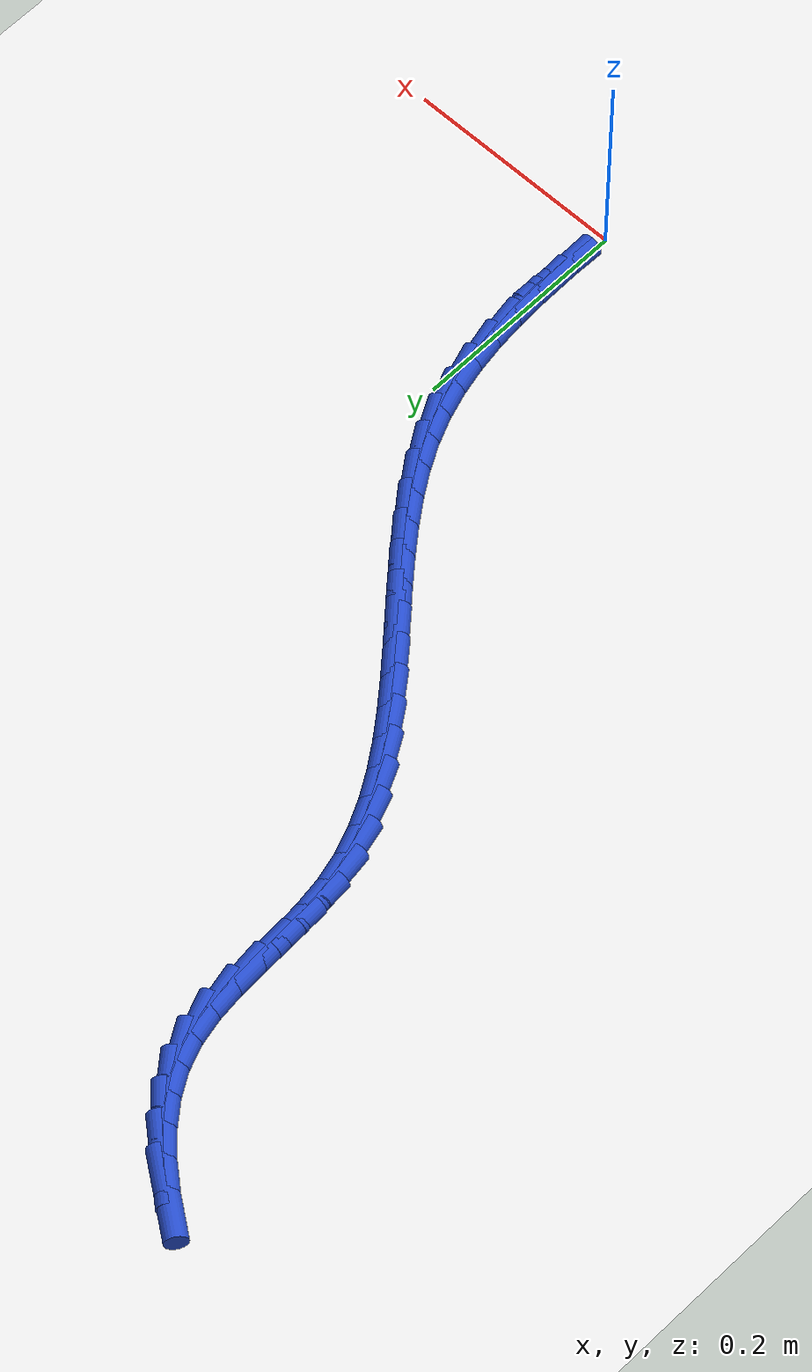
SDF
<sdf version="1.6">
 <world name="default">
  <model name="ground_plane">
   <static>1</static>
   <link name="link">
    <collision name="collision">
     <geometry><plane><normal>0 0 1</normal><size>100 100</size></plane></geometry>
     <surface><friction><ode><mu>100</mu><mu2>50</mu2></ode></friction></surface>
    </collision>
    <visual name="visual">
     <cast_shadows>0</cast_shadows>
     <geometry><plane><normal>0 0 1</normal><size>100 100</size></plane></geometry>
     <material>
      <script><uri>file://media/materials/scripts/gazebo.material</uri><name>Gazebo/WhiteGlow</name></script>
     </material>
    </visual>
   </link>
  </model>
  <model name="line">
   <link name="link_2">
    <pose>0.0007790679116315842 0.05629749624531425 0.01 0 1.57 -1.5500891048895007</pose>
    <collision name="collision">
     <geometry><cylinder><radius>0.01</radius><length>0.08</length></cylinder></geometry>
    </collision>
    <visual name="visual">
     <material>
      <script><name>Gazebo/Blue</name><uri>file://media/materials/scripts/gazebo.material</uri></script>
     </material>
     <geometry><cylinder><radius>0.01</radius><length>0.08</length></cylinder></geometry>
    </visual>
   </link>
   <link name="link_3">
    <pose>0.0001979138139402434 0.08435877041345025 0.01 0 1.57 -1.5134664721738142</pose>
    <collision name="collision">
     <geometry><cylinder><radius>0.01</radius><length>0.08</length></cylinder></geometry>
    </collision>
    <visual name="visual">
     <material>
      <script><name>Gazebo/Blue</name><uri>file://media/materials/scripts/gazebo.material</uri></script>
     </material>
     <geometry><cylinder><radius>0.01</radius><length>0.08</length></cylinder></geometry>
    </visual>
   </link>
   <link name="link_4">
    <pose>-0.001398993875864168 0.11218297808912789 0.01 0 1.57 -1.4659433553836858</pose>
    <collision name="collision">
     <geometry><cylinder><radius>0.01</radius><length>0.08</length></cylinder></geometry>
    </collision>
    <visual name="visual">
     <material>
      <script><name>Gazebo/Blue</name><uri>file://media/materials/scripts/gazebo.material</uri></script>
     </material>
     <geometry><cylinder><radius>0.01</radius><length>0.08</length></cylinder></geometry>
    </visual>
   </link>
   <link name="link_5">
    <pose>-0.004288126325112888 0.13963605638026394 0.01 0 1.57 -1.4068569273346656</pose>
    <collision name="collision">
     <geometry><cylinder><radius>0.01</radius><length>0.08</length></cylinder></geometry>
    </collision>
    <visual name="visual">
     <material>
      <script><name>Gazebo/Blue</name><uri>file://media/materials/scripts/gazebo.material</uri></script>
     </material>
     <geometry><cylinder><radius>0.01</radius><length>0.08</length></cylinder></geometry>
    </visual>
   </link>
   <link name="link_6">
    <pose>-0.008745954701137162 0.1665839423947753 0.01 0 1.57 -1.3356494551655287</pose>
    <collision name="collision">
     <geometry><cylinder><radius>0.01</radius><length>0.08</length></cylinder></geometry>
    </collision>
    <visual name="visual">
     <material>
      <script><name>Gazebo/Blue</name><uri>file://media/materials/scripts/gazebo.material</uri></script>
     </material>
     <geometry><cylinder><radius>0.01</radius><length>0.08</length></cylinder></geometry>
    </visual>
   </link>
   <link name="link_7">
    <pose>-0.015048950171268215 0.19289257324057857 0.01 0 1.57 -1.2521200874395373</pose>
    <collision name="collision">
     <geometry><cylinder><radius>0.01</radius><length>0.08</length></cylinder></geometry>
    </collision>
    <visual name="visual">
     <material>
      <script><name>Gazebo/Blue</name><uri>file://media/materials/scripts/gazebo.material</uri></script>
     </material>
     <geometry><cylinder><radius>0.01</radius><length>0.08</length></cylinder></geometry>
    </visual>
   </link>
   <link name="link_8">
    <pose>-0.023473583902837297 0.2184278860255907 0.01 0 1.57 -1.1592079743053723</pose>
    <collision name="collision">
     <geometry><cylinder><radius>0.01</radius><length>0.08</length></cylinder></geometry>
    </collision>
    <visual name="visual">
     <material>
      <script><name>Gazebo/Blue</name><uri>file://media/materials/scripts/gazebo.material</uri></script>
     </material>
     <geometry><cylinder><radius>0.01</radius><length>0.08</length></cylinder></geometry>
    </visual>
   </link>
   <link name="link_9">
    <pose>-0.034235499437380454 0.2430817234303965 0.01 0 1.57 -1.0742457269397332</pose>
    <collision name="collision">
     <geometry><cylinder><radius>0.01</radius><length>0.08</length></cylinder></geometry>
    </collision>
    <visual name="visual">
     <material>
      <script><name>Gazebo/Blue</name><uri>file://media/materials/scripts/gazebo.material</uri></script>
     </material>
     <geometry><cylinder><radius>0.01</radius><length>0.08</length></cylinder></geometry>
    </visual>
   </link>
   <link name="link_10">
    <pose>-0.047149923148034005 0.2669164597964494 0.01 0 1.57 -1.004362986404253</pose>
    <collision name="collision">
     <geometry><cylinder><radius>0.01</radius><length>0.08</length></cylinder></geometry>
    </collision>
    <visual name="visual">
     <material>
      <script><name>Gazebo/Blue</name><uri>file://media/materials/scripts/gazebo.material</uri></script>
     </material>
     <geometry><cylinder><radius>0.01</radius><length>0.08</length></cylinder></geometry>
    </visual>
   </link>
   <link name="link_11">
    <pose>-0.061870185652145554 0.2900634184371774 0.01 0 1.57 -0.9492944754574141</pose>
    <collision name="collision">
     <geometry><cylinder><radius>0.01</radius><length>0.08</length></cylinder></geometry>
    </collision>
    <visual name="visual">
     <material>
      <script><name>Gazebo/Blue</name><uri>file://media/materials/scripts/gazebo.material</uri></script>
     </material>
     <geometry><cylinder><radius>0.01</radius><length>0.08</length></cylinder></geometry>
    </visual>
   </link>
   <link name="link_12">
    <pose>-0.07804916304784443 0.3126541162389206 0.01 0 1.57 -0.9083384957608868</pose>
    <collision name="collision">
     <geometry><cylinder><radius>0.01</radius><length>0.08</length></cylinder></geometry>
    </collision>
    <visual name="visual">
     <material>
      <script><name>Gazebo/Blue</name><uri>file://media/materials/scripts/gazebo.material</uri></script>
     </material>
     <geometry><cylinder><radius>0.01</radius><length>0.08</length></cylinder></geometry>
    </visual>
   </link>
   <link name="link_13">
    <pose>-0.09533973143325988 0.3348200700880185 0.01 0 1.57 -0.8807233316305242</pose>
    <collision name="collision">
     <geometry><cylinder><radius>0.01</radius><length>0.08</length></cylinder></geometry>
    </collision>
    <visual name="visual">
     <material>
      <script><name>Gazebo/Blue</name><uri>file://media/materials/scripts/gazebo.material</uri></script>
     </material>
     <geometry><cylinder><radius>0.01</radius><length>0.08</length></cylinder></geometry>
    </visual>
   </link>
   <link name="link_14">
    <pose>-0.11339476690652123 0.35669279687081135 0.01 0 1.57 -0.8658207516426746</pose>
    <collision name="collision">
     <geometry><cylinder><radius>0.01</radius><length>0.08</length></cylinder></geometry>
    </collision>
    <visual name="visual">
     <material>
      <script><name>Gazebo/Blue</name><uri>file://media/materials/scripts/gazebo.material</uri></script>
     </material>
     <geometry><cylinder><radius>0.01</radius><length>0.08</length></cylinder></geometry>
    </visual>
   </link>
   <link name="link_15">
    <pose>-0.1318671455657577 0.3784038134736387 0.01 0 1.57 -0.8632602860773909</pose>
    <collision name="collision">
     <geometry><cylinder><radius>0.01</radius><length>0.08</length></cylinder></geometry>
    </collision>
    <visual name="visual">
     <material>
      <script><name>Gazebo/Blue</name><uri>file://media/materials/scripts/gazebo.material</uri></script>
     </material>
     <geometry><cylinder><radius>0.01</radius><length>0.08</length></cylinder></geometry>
    </visual>
   </link>
   <link name="link_16">
    <pose>-0.1504097435090987 0.40008463678284073 0.01 0 1.57 -0.8729798633366467</pose>
    <collision name="collision">
     <geometry><cylinder><radius>0.01</radius><length>0.08</length></cylinder></geometry>
    </collision>
    <visual name="visual">
     <material>
      <script><name>Gazebo/Blue</name><uri>file://media/materials/scripts/gazebo.material</uri></script>
     </material>
     <geometry><cylinder><radius>0.01</radius><length>0.08</length></cylinder></geometry>
    </visual>
   </link>
   <link name="link_17">
    <pose>-0.1686754368346734 0.421866783684757 0.01 0 1.57 -0.8952340096742046</pose>
    <collision name="collision">
     <geometry><cylinder><radius>0.01</radius><length>0.08</length></cylinder></geometry>
    </collision>
    <visual name="visual">
     <material>
      <script><name>Gazebo/Blue</name><uri>file://media/materials/scripts/gazebo.material</uri></script>
     </material>
     <geometry><cylinder><radius>0.01</radius><length>0.08</length></cylinder></geometry>
    </visual>
   </link>
   <link name="link_18">
    <pose>-0.18631710164061102 0.4438817710657274 0.01 0 1.57 -0.9305632364933639</pose>
    <collision name="collision">
     <geometry><cylinder><radius>0.01</radius><length>0.08</length></cylinder></geometry>
    </collision>
    <visual name="visual">
     <material>
      <script><name>Gazebo/Blue</name><uri>file://media/materials/scripts/gazebo.material</uri></script>
     </material>
     <geometry><cylinder><radius>0.01</radius><length>0.08</length></cylinder></geometry>
    </visual>
   </link>
   <link name="link_19">
    <pose>-0.20298761402504106 0.46626111581209206 0.01 0 1.57 -0.9797103766423403</pose>
    <collision name="collision">
     <geometry><cylinder><radius>0.01</radius><length>0.08</length></cylinder></geometry>
    </collision>
    <visual name="visual">
     <material>
      <script><name>Gazebo/Blue</name><uri>file://media/materials/scripts/gazebo.material</uri></script>
     </material>
     <geometry><cylinder><radius>0.01</radius><length>0.08</length></cylinder></geometry>
    </visual>
   </link>
   <link name="link_20">
    <pose>-0.21833985008609264 0.4891363348101906 0.01 0 1.57 -1.043452985396275</pose>
    <collision name="collision">
     <geometry><cylinder><radius>0.01</radius><length>0.08</length></cylinder></geometry>
    </collision>
    <visual name="visual">
     <material>
      <script><name>Gazebo/Blue</name><uri>file://media/materials/scripts/gazebo.material</uri></script>
     </material>
     <geometry><cylinder><radius>0.01</radius><length>0.08</length></cylinder></geometry>
    </visual>
   </link>
   <link name="link_21">
    <pose>-0.23202668592189513 0.512638944946363 0.01 0 1.57 -1.1223125879774722</pose>
    <collision name="collision">
     <geometry><cylinder><radius>0.01</radius><length>0.08</length></cylinder></geometry>
    </collision>
    <visual name="visual">
     <material>
      <script><name>Gazebo/Blue</name><uri>file://media/materials/scripts/gazebo.material</uri></script>
     </material>
     <geometry><cylinder><radius>0.01</radius><length>0.08</length></cylinder></geometry>
    </visual>
   </link>
   <link name="link_22">
    <pose>-0.24370099763057776 0.5369004631069489 0.01 0 1.57 -1.2161211200919668</pose>
    <collision name="collision">
     <geometry><cylinder><radius>0.01</radius><length>0.08</length></cylinder></geometry>
    </collision>
    <visual name="visual">
     <material>
      <script><name>Gazebo/Blue</name><uri>file://media/materials/scripts/gazebo.material</uri></script>
     </material>
     <geometry><cylinder><radius>0.01</radius><length>0.08</length></cylinder></geometry>
    </visual>
   </link>
   <link name="link_23">
    <pose>-0.25301566131026987 0.5620524061782886 0.01 0 1.57 -1.3235025358801134</pose>
    <collision name="collision">
     <geometry><cylinder><radius>0.01</radius><length>0.08</length></cylinder></geometry>
    </collision>
    <visual name="visual">
     <material>
      <script><name>Gazebo/Blue</name><uri>file://media/materials/scripts/gazebo.material</uri></script>
     </material>
     <geometry><cylinder><radius>0.01</radius><length>0.08</length></cylinder></geometry>
    </visual>
   </link>
   <link name="link_24">
    <pose>-0.2596235530591008 0.5882262910467216 0.01 0 1.57 -1.4326529253897289</pose>
    <collision name="collision">
     <geometry><cylinder><radius>0.01</radius><length>0.08</length></cylinder></geometry>
    </collision>
    <visual name="visual">
     <material>
      <script><name>Gazebo/Blue</name><uri>file://media/materials/scripts/gazebo.material</uri></script>
     </material>
     <geometry><cylinder><radius>0.01</radius><length>0.08</length></cylinder></geometry>
    </visual>
   </link>
   <link name="link_25">
    <pose>-0.2634096884339429 0.6154590091943956 0.01 0 1.57 -1.5043987758664819</pose>
    <collision name="collision">
     <geometry><cylinder><radius>0.01</radius><length>0.08</length></cylinder></geometry>
    </collision>
    <visual name="visual">
     <material>
      <script><name>Gazebo/Blue</name><uri>file://media/materials/scripts/gazebo.material</uri></script>
     </material>
     <geometry><cylinder><radius>0.01</radius><length>0.08</length></cylinder></geometry>
    </visual>
   </link>
   <link name="link_26">
    <pose>-0.26526610141909474 0.643376968137311 0.01 0 1.57 -1.5319897572294738</pose>
    <collision name="collision">
     <geometry><cylinder><radius>0.01</radius><length>0.08</length></cylinder></geometry>
    </collision>
    <visual name="visual">
     <material>
      <script><name>Gazebo/Blue</name><uri>file://media/materials/scripts/gazebo.material</uri></script>
     </material>
     <geometry><cylinder><radius>0.01</radius><length>0.08</length></cylinder></geometry>
    </visual>
   </link>
   <link name="link_27">
    <pose>-0.2663578252922254 0.6714952945751038 0.01 0 1.57 -1.517241108202471</pose>
    <collision name="collision">
     <geometry><cylinder><radius>0.01</radius><length>0.08</length></cylinder></geometry>
    </collision>
    <visual name="visual">
     <material>
      <script><name>Gazebo/Blue</name><uri>file://media/materials/scripts/gazebo.material</uri></script>
     </material>
     <geometry><cylinder><radius>0.01</radius><length>0.08</length></cylinder></geometry>
    </visual>
   </link>
   <link name="link_28">
    <pose>-0.2678498983067601 0.6993291131791767 0.01 0 1.57 -1.458303586060912</pose>
    <collision name="collision">
     <geometry><cylinder><radius>0.01</radius><length>0.08</length></cylinder></geometry>
    </collision>
    <visual name="visual">
     <material>
      <script><name>Gazebo/Blue</name><uri>file://media/materials/scripts/gazebo.material</uri></script>
     </material>
     <geometry><cylinder><radius>0.01</radius><length>0.08</length></cylinder></geometry>
    </visual>
   </link>
   <link name="link_29">
    <pose>-0.27090735871612426 0.7263935486209322 0.01 0 1.57 -1.3501975612696395</pose>
    <collision name="collision">
     <geometry><cylinder><radius>0.01</radius><length>0.08</length></cylinder></geometry>
    </collision>
    <visual name="visual">
     <material>
      <script><name>Gazebo/Blue</name><uri>file://media/materials/scripts/gazebo.material</uri></script>
     </material>
     <geometry><cylinder><radius>0.01</radius><length>0.08</length></cylinder></geometry>
    </visual>
   </link>
   <link name="link_30">
    <pose>-0.2766952447737433 0.7522037255717733 0.01 0 1.57 -1.1950326874212696</pose>
    <collision name="collision">
     <geometry><cylinder><radius>0.01</radius><length>0.08</length></cylinder></geometry>
    </collision>
    <visual name="visual">
     <material>
      <script><name>Gazebo/Blue</name><uri>file://media/materials/scripts/gazebo.material</uri></script>
     </material>
     <geometry><cylinder><radius>0.01</radius><length>0.08</length></cylinder></geometry>
    </visual>
   </link>
   <link name="link_31">
    <pose>-0.28621562427091757 0.7763359616284502 0.01 0 1.57 -1.0385113715244263</pose>
    <collision name="collision">
     <geometry><cylinder><radius>0.01</radius><length>0.08</length></cylinder></geometry>
    </collision>
    <visual name="visual">
     <material>
      <script><name>Gazebo/Blue</name><uri>file://media/materials/scripts/gazebo.material</uri></script>
     </material>
     <geometry><cylinder><radius>0.01</radius><length>0.08</length></cylinder></geometry>
    </visual>
   </link>
   <link name="link_32">
    <pose>-0.2994231002447276 0.798759881442713 0.01 0 1.57 -0.9030539173214832</pose>
    <collision name="collision">
     <geometry><cylinder><radius>0.01</radius><length>0.08</length></cylinder></geometry>
    </collision>
    <visual name="visual">
     <material>
      <script><name>Gazebo/Blue</name><uri>file://media/materials/scripts/gazebo.material</uri></script>
     </material>
     <geometry><cylinder><radius>0.01</radius><length>0.08</length></cylinder></geometry>
    </visual>
   </link>
   <link name="link_33">
    <pose>-0.3158578858903623 0.8196007067378854 0.01 0 1.57 -0.7901164934247928</pose>
    <collision name="collision">
     <geometry><cylinder><radius>0.01</radius><length>0.08</length></cylinder></geometry>
    </collision>
    <visual name="visual">
     <material>
      <script><name>Gazebo/Blue</name><uri>file://media/materials/scripts/gazebo.material</uri></script>
     </material>
     <geometry><cylinder><radius>0.01</radius><length>0.08</length></cylinder></geometry>
    </visual>
   </link>
   <link name="link_34">
    <pose>-0.335059167612795 0.8389840447813733 0.01 0 1.57 -0.6982673568344422</pose>
    <collision name="collision">
     <geometry><cylinder><radius>0.01</radius><length>0.08</length></cylinder></geometry>
    </collision>
    <visual name="visual">
     <material>
      <script><name>Gazebo/Blue</name><uri>file://media/materials/scripts/gazebo.material</uri></script>
     </material>
     <geometry><cylinder><radius>0.01</radius><length>0.08</length></cylinder></geometry>
    </visual>
   </link>
   <link name="link_35">
    <pose>-0.3565661318169987 0.8570355028405823 0.01 0 1.57 -0.6249211696366177</pose>
    <collision name="collision">
     <geometry><cylinder><radius>0.01</radius><length>0.08</length></cylinder></geometry>
    </collision>
    <visual name="visual">
     <material>
      <script><name>Gazebo/Blue</name><uri>file://media/materials/scripts/gazebo.material</uri></script>
     </material>
     <geometry><cylinder><radius>0.01</radius><length>0.08</length></cylinder></geometry>
    </visual>
   </link>
   <link name="link_282">
    <pose>0.0013338150649662792 0.0564593107174005 0.01 0 1.57 1.547176360620891</pose>
    <collision name="collision">
     <geometry><cylinder><radius>0.01</radius><length>0.08</length></cylinder></geometry>
    </collision>
    <visual name="visual">
     <material>
      <script><name>Gazebo/Blue</name><uri>file://media/materials/scripts/gazebo.material</uri></script>
     </material>
     <geometry><cylinder><radius>0.01</radius><length>0.08</length></cylinder></geometry>
    </visual>
   </link>
  </model>
 </world>
</sdf>
